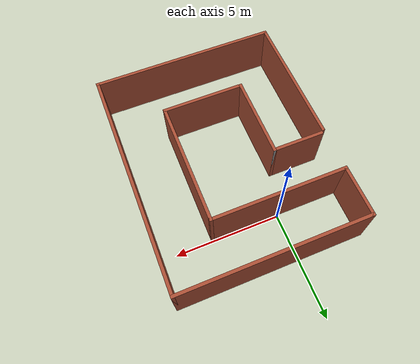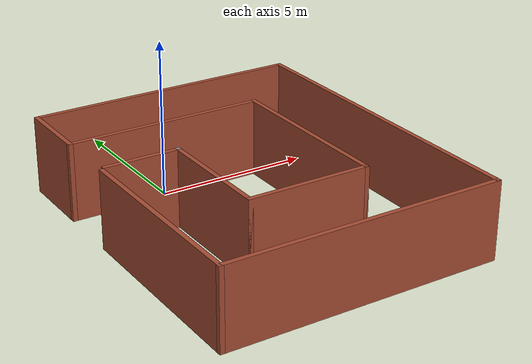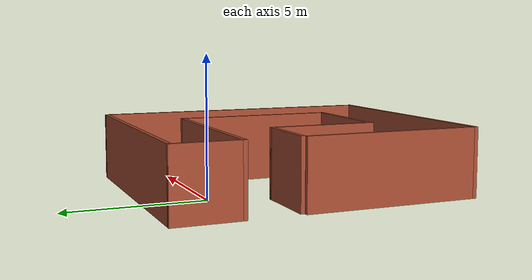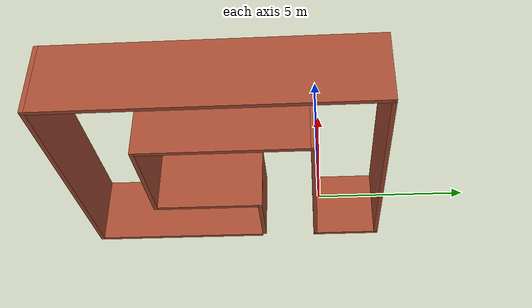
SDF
<?xml version='1.0'?>
<sdf version='1.6'>
  <model name='C_maze'>
    <pose frame=''>1.295 -3.225 0 0 -0 0</pose>
    <link name='Wall_0'>
      <collision name='Wall_0_Collision'>
        <geometry>
          <box>
            <size>2.5 0.15 2.5</size>
          </box>
        </geometry>
        <pose frame=''>0 0 1.25 0 -0 0</pose>
      </collision>
      <visual name='Wall_0_Visual'>
        <pose frame=''>0 0 1.25 0 -0 0</pose>
        <geometry>
          <box>
            <size>2.5 0.15 2.5</size>
          </box>
        </geometry>
        <material>
          <script>
            <uri>file://media/materials/scripts/gazebo.material</uri>
            <name>Gazebo/Bricks</name>
          </script>
          <ambient>1 1 1 1</ambient>
        </material>
      </visual>
      <pose frame=''>-3.1 1.075 0 0 -0 0</pose>
    </link>
    <link name='Wall_1'>
      <collision name='Wall_1_Collision'>
        <geometry>
          <box>
            <size>0.15 0.15 2.5</size>
          </box>
        </geometry>
        <pose frame=''>0 0 1.25 0 -0 0</pose>
      </collision>
      <visual name='Wall_1_Visual'>
        <pose frame=''>0 0 1.25 0 -0 0</pose>
        <geometry>
          <box>
            <size>0.15 0.15 2.5</size>
          </box>
        </geometry>
        <material>
          <script>
            <uri>file://media/materials/scripts/gazebo.material</uri>
            <name>Gazebo/Grey</name>
          </script>
          <ambient>1 1 1 1</ambient>
        </material>
      </visual>
      <pose frame=''>-1.925 1.075 0 0 -0 0</pose>
    </link>
    <link name='Wall_10'>
      <collision name='Wall_10_Collision'>
        <geometry>
          <box>
            <size>6.5 0.15 2.5</size>
          </box>
        </geometry>
        <pose frame=''>0 0 1.25 0 -0 0</pose>
      </collision>
      <visual name='Wall_10_Visual'>
        <pose frame=''>0 0 1.25 0 -0 0</pose>
        <geometry>
          <box>
            <size>6.5 0.15 2.5</size>
          </box>
        </geometry>
        <material>
          <script>
            <uri>file://media/materials/scripts/gazebo.material</uri>
            <name>Gazebo/Bricks</name>
          </script>
          <ambient>1 1 1 1</ambient>
        </material>
      </visual>
      <pose frame=''>-4.425 -2.25 0 0 -0 1.5708</pose>
    </link>
    <link name='Wall_2'>
      <collision name='Wall_2_Collision'>
        <geometry>
          <box>
            <size>4 0.15 2.5</size>
          </box>
        </geometry>
        <pose frame=''>0 0 1.25 0 -0 0</pose>
      </collision>
      <visual name='Wall_2_Visual'>
        <pose frame=''>0 0 1.25 0 -0 0</pose>
        <geometry>
          <box>
            <size>4 0.15 2.5</size>
          </box>
        </geometry>
        <material>
          <script>
            <uri>file://media/materials/scripts/gazebo.material</uri>
            <name>Gazebo/Bricks</name>
          </script>
          <ambient>1 1 1 1</ambient>
        </material>
      </visual>
      <pose frame=''>-1.925 -0.85 0 0 0 -1.5708</pose>
    </link>
    <link name='Wall_3'>
      <collision name='Wall_3_Collision'>
        <geometry>
          <box>
            <size>4 0.15 2.5</size>
          </box>
        </geometry>
        <pose frame=''>0 0 1.25 0 -0 0</pose>
      </collision>
      <visual name='Wall_3_Visual'>
        <pose frame=''>0 0 1.25 0 -0 0</pose>
        <geometry>
          <box>
            <size>4 0.15 2.5</size>
          </box>
        </geometry>
        <material>
          <script>
            <uri>file://media/materials/scripts/gazebo.material</uri>
            <name>Gazebo/Bricks</name>
          </script>
          <ambient>1 1 1 1</ambient>
        </material>
      </visual>
      <pose frame=''>0 -2.775 0 0 -0 0</pose>
    </link>
    <link name='Wall_4'>
      <collision name='Wall_4_Collision'>
        <geometry>
          <box>
            <size>6 0.15 2.5</size>
          </box>
        </geometry>
        <pose frame=''>0 0 1.25 0 -0 0</pose>
      </collision>
      <visual name='Wall_4_Visual'>
        <pose frame=''>0 0 1.25 0 -0 0</pose>
        <geometry>
          <box>
            <size>6 0.15 2.5</size>
          </box>
        </geometry>
        <material>
          <script>
            <uri>file://media/materials/scripts/gazebo.material</uri>
            <name>Gazebo/Bricks</name>
          </script>
          <ambient>1 1 1 1</ambient>
        </material>
      </visual>
      <pose frame=''>1.925 0.15 0 0 -0 1.5708</pose>
    </link>
    <link name='Wall_5'>
      <collision name='Wall_5_Collision'>
        <geometry>
          <box>
            <size>6.5 0.15 2.5</size>
          </box>
        </geometry>
        <pose frame=''>0 0 1.25 0 -0 0</pose>
      </collision>
      <visual name='Wall_5_Visual'>
        <pose frame=''>0 0 1.25 0 -0 0</pose>
        <geometry>
          <box>
            <size>6.5 0.15 2.5</size>
          </box>
        </geometry>
        <material>
          <script>
            <uri>file://media/materials/scripts/gazebo.material</uri>
            <name>Gazebo/Bricks</name>
          </script>
          <ambient>1 1 1 1</ambient>
        </material>
      </visual>
      <pose frame=''>-1.25 3.075 0 0 -0 3.14159</pose>
    </link>
    <link name='Wall_6'>
      <collision name='Wall_6_Collision'>
        <geometry>
          <box>
            <size>2.5 0.15 2.5</size>
          </box>
        </geometry>
        <pose frame=''>0 0 1.25 0 -0 0</pose>
      </collision>
      <visual name='Wall_6_Visual'>
        <pose frame=''>0 0 1.25 0 -0 0</pose>
        <geometry>
          <box>
            <size>2.5 0.15 2.5</size>
          </box>
        </geometry>
        <material>
          <script>
            <uri>file://media/materials/scripts/gazebo.material</uri>
            <name>Gazebo/Bricks</name>
          </script>
          <ambient>1 1 1 1</ambient>
        </material>
      </visual>
      <pose frame=''>-4.425 4.25 0 0 -0 1.5708</pose>
    </link>
    <link name='Wall_7'>
      <collision name='Wall_7_Collision'>
        <geometry>
          <box>
            <size>9 0.15 2.5</size>
          </box>
        </geometry>
        <pose frame=''>0 0 1.25 0 -0 0</pose>
      </collision>
      <visual name='Wall_7_Visual'>
        <pose frame=''>0 0 1.25 0 -0 0</pose>
        <geometry>
          <box>
            <size>9 0.15 2.5</size>
          </box>
        </geometry>
        <material>
          <script>
            <uri>file://media/materials/scripts/gazebo.material</uri>
            <name>Gazebo/Bricks</name>
          </script>
          <ambient>1 1 1 1</ambient>
        </material>
      </visual>
      <pose frame=''>0 5.425 0 0 -0 0</pose>
    </link>
    <link name='Wall_8'>
      <collision name='Wall_8_Collision'>
        <geometry>
          <box>
            <size>11 0.15 2.5</size>
          </box>
        </geometry>
        <pose frame=''>0 0 1.25 0 -0 0</pose>
      </collision>
      <visual name='Wall_8_Visual'>
        <pose frame=''>0 0 1.25 0 -0 0</pose>
        <geometry>
          <box>
            <size>11 0.15 2.5</size>
          </box>
        </geometry>
        <material>
          <script>
            <uri>file://media/materials/scripts/gazebo.material</uri>
            <name>Gazebo/Bricks</name>
          </script>
          <ambient>1 1 1 1</ambient>
        </material>
      </visual>
      <pose frame=''>4.425 0 0 0 0 -1.5708</pose>
    </link>
    <link name='Wall_9'>
      <collision name='Wall_9_Collision'>
        <geometry>
          <box>
            <size>9 0.15 2.5</size>
          </box>
        </geometry>
        <pose frame=''>0 0 1.25 0 -0 0</pose>
      </collision>
      <visual name='Wall_9_Visual'>
        <pose frame=''>0 0 1.25 0 -0 0</pose>
        <geometry>
          <box>
            <size>9 0.15 2.5</size>
          </box>
        </geometry>
        <material>
          <script>
            <uri>file://media/materials/scripts/gazebo.material</uri>
            <name>Gazebo/Bricks</name>
          </script>
          <ambient>1 1 1 1</ambient>
        </material>
      </visual>
      <pose frame=''>0 -5.425 0 0 -0 3.14159</pose>
    </link>
    <static>1</static>
  </model>
</sdf>
